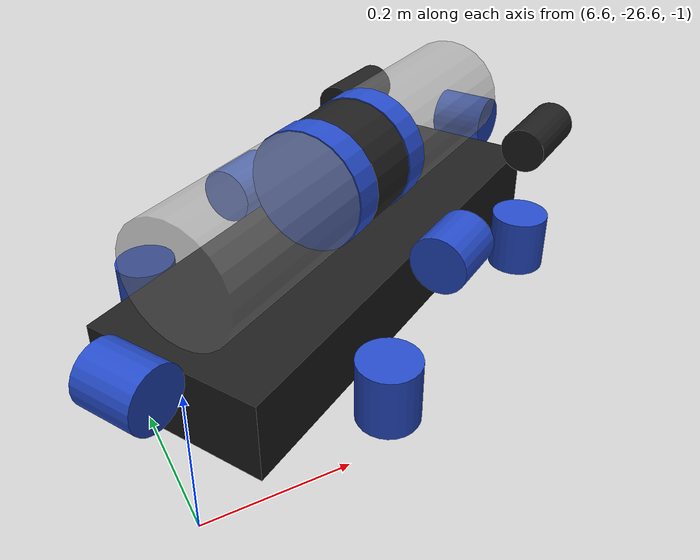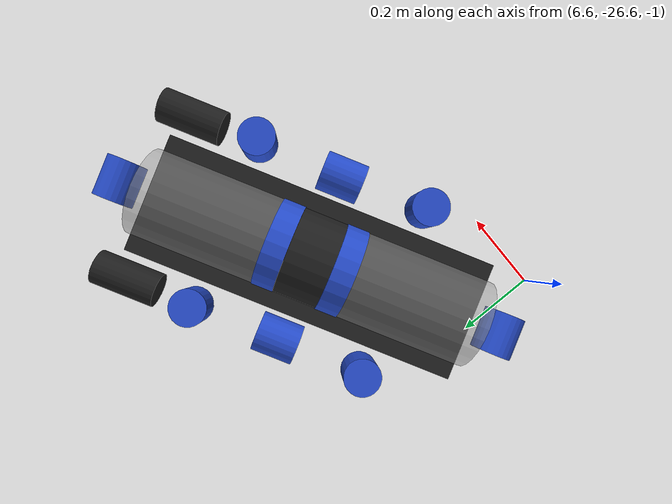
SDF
<sdf version="1.6">
 <world name="default">
  <model name="dock_side_a">
   <static>1</static>
   <pose>4.8 -28 -0.67 0 -0 0</pose>
   <link name="link">
    <collision name="collision"><geometry><box><size>3 2 0.35</size></box></geometry></collision>
    <visual name="visual">
     <geometry><box><size>3 2 0.35</size></box></geometry>
     <material>
      <script><uri>file://media/materials/scripts/gazebo.material</uri><name>Gazebo/Grey</name></script>
     </material>
    </visual>
   </link>
  </model>
  <model name="robosub">
   <pose>6.99963 -26.2002 -0.882014 -8e-06 -0.015423 0.509517</pose>
   <joint name="hull_frame" type="fixed"><parent>frame</parent><child>hull</child></joint>
   <joint name="dive_front_left_frame" type="fixed"><parent>frame</parent><child>dive_front_left</child></joint>
   <joint name="dive_front_right_frame" type="fixed">
    <parent>frame</parent>
    <child>dive_front_right</child>
   </joint>
   <joint name="dive_back_left_frame" type="fixed"><parent>frame</parent><child>dive_back_left</child></joint>
   <joint name="dive_back_right_frame" type="fixed"><parent>frame</parent><child>dive_back_right</child></joint>
   <joint name="strafe_front_frame" type="fixed"><parent>frame</parent><child>strafe_front</child></joint>
   <joint name="strafe_back_frame" type="fixed"><parent>frame</parent><child>strafe_back</child></joint>
   <joint name="forward_left_frame" type="fixed"><parent>frame</parent><child>forward_left</child></joint>
   <joint name="forward_right_frame" type="fixed"><parent>frame</parent><child>forward_right</child></joint>
   <joint name="left_camera_frame" type="fixed"><parent>frame</parent><child>left_camera</child></joint>
   <joint name="right_camera_frame" type="fixed"><parent>frame</parent><child>right_camera</child></joint>
   <joint name="bottom_camera_frame" type="fixed"><parent>frame</parent><child>bottom_camera</child></joint>
   <joint name="hydrophone_h0_frame" type="fixed"><parent>frame</parent><child>hydrophone_h0</child></joint>
   <joint name="hydrophone_hx_frame" type="fixed"><parent>frame</parent><child>hydrophone_hx</child></joint>
   <joint name="hydrophone_hy_frame" type="fixed"><parent>frame</parent><child>hydrophone_hy</child></joint>
   <joint name="hydrophone_hz_frame" type="fixed"><parent>frame</parent><child>hydrophone_hz</child></joint>
   <link name="hull">
    <pose>0 0 0.082 1.5708 -0 1.5708</pose>
    <inertial>
     <mass>10</mass>
     <inertia><ixx>1</ixx><ixy>0</ixy><ixz>0</ixz><iyy>1</iyy><iyz>0</iyz><izz>1</izz></inertia>
    </inertial>
    <visual name="bulkhead_visual">
     <geometry><cylinder><radius>0.1</radius><length>0.13</length></cylinder></geometry>
     <material>
      <script><uri>file://media/materials/scripts/gazebo.material</uri><name>Gazebo/Black</name></script>
     </material>
    </visual>
    <visual name="front_ring_visual">
     <pose>0 0 0.075 0 -0 0</pose>
     <geometry><cylinder><radius>0.102</radius><length>0.05</length></cylinder></geometry>
     <material>
      <script><uri>file://media/materials/scripts/gazebo.material</uri><name>Gazebo/Blue</name></script>
     </material>
    </visual>
    <visual name="rear_ring_visual">
     <pose>0 0 -0.075 0 -0 0</pose>
     <geometry><cylinder><radius>0.102</radius><length>0.05</length></cylinder></geometry>
     <material>
      <script><uri>file://media/materials/scripts/gazebo.material</uri><name>Gazebo/Blue</name></script>
     </material>
    </visual>
    <visual name="front_tube_visual">
     <pose>0 0 0.235 0 -0 0</pose>
     <geometry><cylinder><radius>0.1</radius><length>0.32</length></cylinder></geometry>
     <material>
      <script><uri>file://media/materials/scripts/gazebo.material</uri><name>Gazebo/GreyTransparent</name></script>
      <diffuse>0.6 0.6 0.6 0.6</diffuse>
     </material>
    </visual>
    <visual name="rear_tube_visual">
     <pose>0 0 -0.235 0 -0 0</pose>
     <geometry><cylinder><radius>0.1</radius><length>0.32</length></cylinder></geometry>
     <material>
      <script><uri>file://media/materials/scripts/gazebo.material</uri><name>Gazebo/GreyTransparent</name></script>
      <diffuse>0.6 0.6 0.6 0.6</diffuse>
     </material>
    </visual>
    <collision name="hull_collision">
     <geometry><cylinder><radius>0.1</radius><length>0.77</length></cylinder></geometry>
    </collision>
    <velocity_decay><linear>0.002</linear><angular>0.002</angular></velocity_decay>
   </link>
   <link name="hydrophone_h0">
    <inertial>
     <mass>0.001</mass>
     <inertia><ixx>1</ixx><ixy>0</ixy><ixz>0</ixz><iyy>1</iyy><iyz>0</iyz><izz>1</izz></inertia>
    </inertial>
   </link>
   <link name="hydrophone_hx">
    <pose>0.015 0 0 0 -0 0</pose>
    <inertial>
     <mass>0.001</mass>
     <inertia><ixx>1</ixx><ixy>0</ixy><ixz>0</ixz><iyy>1</iyy><iyz>0</iyz><izz>1</izz></inertia>
    </inertial>
   </link>
   <link name="hydrophone_hy">
    <pose>0 0.015 0 0 -0 0</pose>
    <inertial>
     <mass>0.001</mass>
     <inertia><ixx>1</ixx><ixy>0</ixy><ixz>0</ixz><iyy>1</iyy><iyz>0</iyz><izz>1</izz></inertia>
    </inertial>
   </link>
   <link name="hydrophone_hz">
    <pose>0 0 0.015 0 -0 0</pose>
    <inertial>
     <mass>0.001</mass>
     <inertia><ixx>1</ixx><ixy>0</ixy><ixz>0</ixz><iyy>1</iyy><iyz>0</iyz><izz>1</izz></inertia>
    </inertial>
   </link>
   <link name="frame">
    <pose>0 0 -0.088 0 -0 0</pose>
    <inertial>
     <mass>16.5</mass>
     <inertia><ixx>1</ixx><ixy>0</ixy><ixz>0</ixz><iyy>1</iyy><iyz>0</iyz><izz>1</izz></inertia>
    </inertial>
    <visual name="frame_visual">
     <geometry><box><size>0.85 0.3 0.13</size></box></geometry>
     <material>
      <script><uri>file://media/materials/scripts/gazebo.material</uri><name>Gazebo/FlatBlack</name></script>
     </material>
    </visual>
    <collision name="frame_collision"><geometry><box><size>0.85 0.3 0.13</size></box></geometry></collision>
    <velocity_decay><linear>0.002</linear><angular>0.002</angular></velocity_decay>
   </link>
   <link name="dive_front_left">
    <pose>0.235 0.23 -0.1 3.14159 3e-06 3.14159</pose>
    <inertial>
     <mass>0.344</mass>
     <inertia><ixx>1</ixx><ixy>0</ixy><ixz>0</ixz><iyy>1</iyy><iyz>0</iyz><izz>1</izz></inertia>
    </inertial>
    <visual name="dive_front_left_visual">
     <geometry><cylinder><radius>0.0485</radius><length>0.101</length></cylinder></geometry>
     <material>
      <script><uri>file://media/materials/scripts/gazebo.material</uri><name>Gazebo/Blue</name></script>
     </material>
    </visual>
    <collision name="dive_front_left_collision">
     <geometry><cylinder><radius>0.0485</radius><length>0.101</length></cylinder></geometry>
    </collision>
   </link>
   <link name="dive_front_right">
    <pose>0.235 -0.23 -0.1 3.14159 3e-06 3.14159</pose>
    <inertial>
     <mass>0.344</mass>
     <inertia><ixx>1</ixx><ixy>0</ixy><ixz>0</ixz><iyy>1</iyy><iyz>0</iyz><izz>1</izz></inertia>
    </inertial>
    <visual name="dive_front_right_visual">
     <geometry><cylinder><radius>0.0485</radius><length>0.101</length></cylinder></geometry>
     <material>
      <script><uri>file://media/materials/scripts/gazebo.material</uri><name>Gazebo/Blue</name></script>
     </material>
    </visual>
    <collision name="dive_front_right_collision">
     <geometry><cylinder><radius>0.0485</radius><length>0.101</length></cylinder></geometry>
    </collision>
   </link>
   <link name="dive_back_left">
    <pose>-0.235 0.23 -0.1 3.14159 3e-06 3.14159</pose>
    <inertial>
     <mass>0.344</mass>
     <inertia><ixx>1</ixx><ixy>0</ixy><ixz>0</ixz><iyy>1</iyy><iyz>0</iyz><izz>1</izz></inertia>
    </inertial>
    <visual name="dive_back_left_visual">
     <geometry><cylinder><radius>0.0485</radius><length>0.101</length></cylinder></geometry>
     <material>
      <script><uri>file://media/materials/scripts/gazebo.material</uri><name>Gazebo/Blue</name></script>
     </material>
    </visual>
    <collision name="dive_back_left_collision">
     <geometry><cylinder><radius>0.0485</radius><length>0.101</length></cylinder></geometry>
    </collision>
   </link>
   <link name="dive_back_right">
    <pose>-0.235 -0.23 -0.1 3.14159 3e-06 3.14159</pose>
    <inertial>
     <mass>0.344</mass>
     <inertia><ixx>1</ixx><ixy>0</ixy><ixz>0</ixz><iyy>1</iyy><iyz>0</iyz><izz>1</izz></inertia>
    </inertial>
    <visual name="dive_back_right_visual">
     <geometry><cylinder><radius>0.0485</radius><length>0.101</length></cylinder></geometry>
     <material>
      <script><uri>file://media/materials/scripts/gazebo.material</uri><name>Gazebo/Blue</name></script>
     </material>
    </visual>
    <collision name="dive_back_right_collision">
     <geometry><cylinder><radius>0.0485</radius><length>0.101</length></cylinder></geometry>
    </collision>
   </link>
   <link name="strafe_front">
    <pose>0.49 0 -0.01 -1.5708 0 0</pose>
    <inertial>
     <mass>0.344</mass>
     <inertia><ixx>1</ixx><ixy>0</ixy><ixz>0</ixz><iyy>1</iyy><iyz>0</iyz><izz>1</izz></inertia>
    </inertial>
    <visual name="strafe_front_visual">
     <geometry><cylinder><radius>0.0485</radius><length>0.101</length></cylinder></geometry>
     <material>
      <script><uri>file://media/materials/scripts/gazebo.material</uri><name>Gazebo/Blue</name></script>
     </material>
    </visual>
    <collision name="strafe_front_collision">
     <geometry><cylinder><radius>0.0485</radius><length>0.101</length></cylinder></geometry>
    </collision>
   </link>
   <link name="strafe_back">
    <pose>-0.49 0 -0.01 -1.5708 0 0</pose>
    <inertial>
     <mass>0.344</mass>
     <inertia><ixx>1</ixx><ixy>0</ixy><ixz>0</ixz><iyy>1</iyy><iyz>0</iyz><izz>1</izz></inertia>
    </inertial>
    <visual name="strafe_back_visual">
     <geometry><cylinder><radius>0.0485</radius><length>0.101</length></cylinder></geometry>
     <material>
      <script><uri>file://media/materials/scripts/gazebo.material</uri><name>Gazebo/Blue</name></script>
     </material>
    </visual>
    <collision name="strafe_back_collision">
     <geometry><cylinder><radius>0.0485</radius><length>0.101</length></cylinder></geometry>
    </collision>
   </link>
   <link name="forward_left">
    <pose>0 0.2075 -0.01 3.14159 -1.57079 3.14159</pose>
    <inertial>
     <mass>0.344</mass>
     <inertia><ixx>1</ixx><ixy>0</ixy><ixz>0</ixz><iyy>1</iyy><iyz>0</iyz><izz>1</izz></inertia>
    </inertial>
    <visual name="forward_left_visual">
     <geometry><cylinder><radius>0.0485</radius><length>0.101</length></cylinder></geometry>
     <material>
      <script><uri>file://media/materials/scripts/gazebo.material</uri><name>Gazebo/Blue</name></script>
     </material>
    </visual>
    <collision name="forward_left_collision">
     <geometry><cylinder><radius>0.0485</radius><length>0.101</length></cylinder></geometry>
    </collision>
   </link>
   <link name="forward_right">
    <pose>0 -0.2075 -0.01 3.14159 -1.57079 3.14159</pose>
    <inertial>
     <mass>0.344</mass>
     <inertia><ixx>1</ixx><ixy>0</ixy><ixz>0</ixz><iyy>1</iyy><iyz>0</iyz><izz>1</izz></inertia>
    </inertial>
    <visual name="forward_right_visual">
     <geometry><cylinder><radius>0.0485</radius><length>0.101</length></cylinder></geometry>
     <material>
      <script><uri>file://media/materials/scripts/gazebo.material</uri><name>Gazebo/Blue</name></script>
     </material>
    </visual>
    <collision name="forward_right_collision">
     <geometry><cylinder><radius>0.0485</radius><length>0.101</length></cylinder></geometry>
    </collision>
   </link>
   <link name="left_camera">
    <pose>0.37 0.2 0.04 3.14159 1.57079 3.14159</pose>
    <inertial>
     <mass>0.73</mass>
     <inertia><ixx>1</ixx><ixy>0</ixy><ixz>0</ixz><iyy>1</iyy><iyz>0</iyz><izz>1</izz></inertia>
    </inertial>
    <visual name="left_camera_visual">
     <geometry><cylinder><radius>0.0405</radius><length>0.15</length></cylinder></geometry>
     <material>
      <script><uri>file://media/materials/scripts/gazebo.material</uri><name>Gazebo/Black</name></script>
     </material>
    </visual>
    <collision name="left_camera_collision">
     <geometry><cylinder><radius>0.0405</radius><length>0.15</length></cylinder></geometry>
    </collision>
    <sensor name="left" type="wideanglecamera">
     <pose>0 0 0.14 3.14159 -1.57079 3.14159</pose>
     <camera name="__default__">
      <horizontal_fov>3.1415</horizontal_fov>
      <image><width>1384</width><height>1032</height></image>
      <clip><near>0.001</near><far>100</far></clip>
      <lens>
       <type>custom</type>
       <custom_function><c1>685.4</c1><c2>525.2</c2><f>307.533</f><fun>tan</fun></custom_function>
       <scale_to_hfov>1</scale_to_hfov>
       <cutoff_angle>1.57075</cutoff_angle>
       <env_texture_size>512</env_texture_size>
      </lens>
      <distortion>
       <k1>-0.164923</k1>
       <k2>0.0161872</k2>
       <k3>-0.000389519</k3>
       <p1>0</p1>
       <p2>0</p2>
       <center>0 0</center>
      </distortion>
     </camera>
     <plugin name="left_camera_controller" filename="libgazebo_ros_camera.so">
      <cameraName>left</cameraName>
      <imageTopicName>/camera/left/image_raw</imageTopicName>
     </plugin>
     <always_on>1</always_on>
     <update_rate>5</update_rate>
    </sensor>
   </link>
   <link name="right_camera">
    <pose>0.37 -0.2 0.04 3.14159 1.57079 3.14159</pose>
    <inertial>
     <mass>0.73</mass>
     <inertia><ixx>1</ixx><ixy>0</ixy><ixz>0</ixz><iyy>1</iyy><iyz>0</iyz><izz>1</izz></inertia>
    </inertial>
    <visual name="right_camera_visual">
     <geometry><cylinder><radius>0.0405</radius><length>0.15</length></cylinder></geometry>
     <material>
      <script><uri>file://media/materials/scripts/gazebo.material</uri><name>Gazebo/Black</name></script>
     </material>
    </visual>
    <collision name="right_camera_collision">
     <geometry><cylinder><radius>0.0405</radius><length>0.15</length></cylinder></geometry>
    </collision>
    <sensor name="right" type="wideanglecamera">
     <pose>0 0 0.14 3.14159 -1.57079 3.14159</pose>
     <camera name="__default__">
      <horizontal_fov>3.1415</horizontal_fov>
      <image><width>1384</width><height>1032</height></image>
      <clip><near>0.1</near><far>100</far></clip>
      <lens>
       <type>custom</type>
       <custom_function><c1>667.1</c1><c2>536.7</c2><f>317.863</f><fun>tan</fun></custom_function>
       <scale_to_hfov>1</scale_to_hfov>
       <cutoff_angle>1.57075</cutoff_angle>
       <env_texture_size>512</env_texture_size>
      </lens>
      <distortion>
       <k1>-0.164923</k1>
       <k2>0.0161872</k2>
       <k3>-0.000389519</k3>
       <p1>0</p1>
       <p2>0</p2>
       <center>0 0</center>
      </distortion>
     </camera>
     <plugin name="right_camera_controller" filename="libgazebo_ros_camera.so">
      <cameraName>right</cameraName>
      <imageTopicName>/camera/right/image_raw</imageTopicName>
     </plugin>
     <always_on>1</always_on>
     <update_rate>5</update_rate>
    </sensor>
   </link>
   <link name="bottom_camera">
    <pose>0 0 -0.1 3.14159 -0 3.14159</pose>
    <inertial>
     <mass>0.73</mass>
     <inertia><ixx>1</ixx><ixy>0</ixy><ixz>0</ixz><iyy>1</iyy><iyz>0</iyz><izz>1</izz></inertia>
    </inertial>
    <visual name="bottom_camera_visual">
     <geometry><cylinder><radius>0.0405</radius><length>0.15</length></cylinder></geometry>
     <material>
      <script><uri>file://media/materials/scripts/gazebo.material</uri><name>Gazebo/Black</name></script>
     </material>
    </visual>
    <collision name="bottom_camera_collision">
     <geometry><cylinder><radius>0.0405</radius><length>0.15</length></cylinder></geometry>
    </collision>
    <sensor name="bottom" type="wideanglecamera">
     <pose>0 0 0.14 3.14159 -1.57079 3.14159</pose>
     <camera name="__default__">
      <horizontal_fov>3.1415</horizontal_fov>
      <image><width>1384</width><height>1032</height></image>
      <clip><near>0.1</near><far>100</far></clip>
      <lens>
       <type>custom</type>
       <custom_function><c1>691.5</c1><c2>515.5</c2><f>341.433</f><fun>tan</fun></custom_function>
       <scale_to_hfov>1</scale_to_hfov>
       <cutoff_angle>1.57075</cutoff_angle>
       <env_texture_size>512</env_texture_size>
      </lens>
      <distortion>
       <k1>-0.164923</k1>
       <k2>0.0161872</k2>
       <k3>-0.000389519</k3>
       <p1>0</p1>
       <p2>0</p2>
       <center>0 0</center>
      </distortion>
     </camera>
     <plugin name="bottom_camera_controller" filename="libgazebo_ros_camera.so">
      <cameraName>bottom</cameraName>
      <imageTopicName>/camera/bottom/image_raw</imageTopicName>
     </plugin>
     <always_on>1</always_on>
     <update_rate>5</update_rate>
    </sensor>
   </link>
   <allow_auto_disable>0</allow_auto_disable>
   <plugin name="thruster" filename="libthruster.so"/>
   <plugin name="buoyancy_improved" filename="libbuoyancy_improved.so">
    <fluid_density>1000</fluid_density>
    <link name="frame"><volume>0.0026</volume></link>
    <link name="dive_back_right"><volume>0.000334</volume></link>
    <link name="dive_back_left"><volume>0.000334</volume></link>
    <link name="dive_front_right"><volume>0.000334</volume></link>
    <link name="dive_front_left"><volume>0.000334</volume></link>
    <link name="strafe_front"><volume>0.000334</volume></link>
    <link name="strafe_back"><volume>0.000334</volume></link>
    <link name="forward_right"><volume>0.000334</volume></link>
    <link name="forward_left"><volume>0.000334</volume></link>
   </plugin>
   <plugin name="imu" filename="libgazebo_ros_imu.so">
    <alwaysOn>true</alwaysOn>
    <bodyName>frame</bodyName>
    <topicName>gazebo/rs_imu</topicName>
    <serviceName>gazebo/rs_imu_service</serviceName>
    <gaussianNoise>0.0</gaussianNoise>
    <updateRate>20.0</updateRate>
   </plugin>
   <plugin name="marker_dropper" filename="libmarkerdrop.so"/>
   <plugin name="torpedo_shooter" filename="libtorpedoshoot.so"/>
  </model>
 </world>
</sdf>
